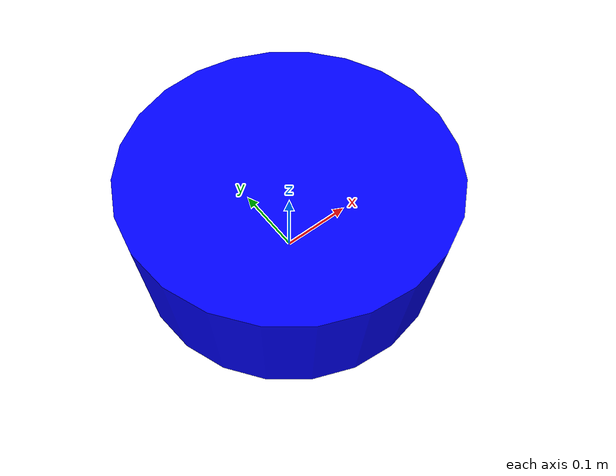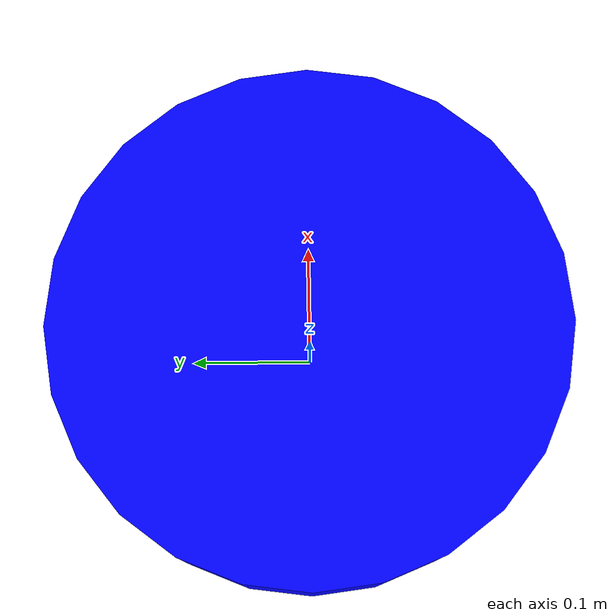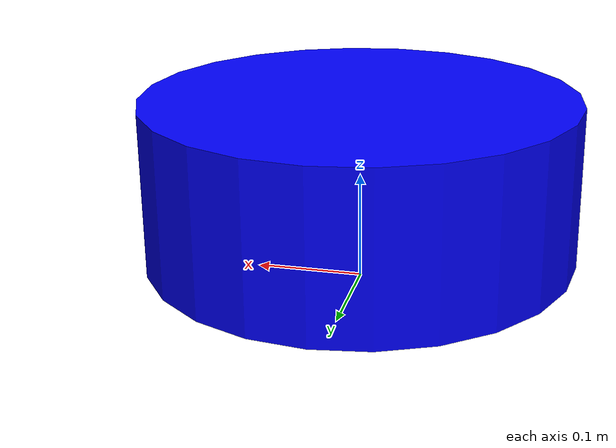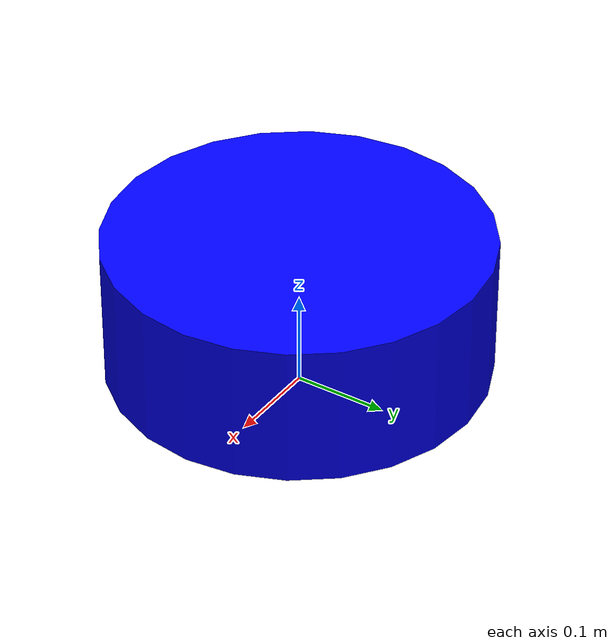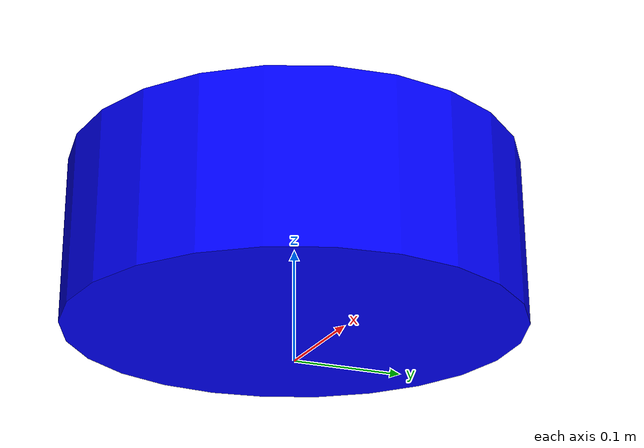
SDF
<!-- robot.sdf -->
<sdf version="1.6">
  <model name="simple_diff_drive">
    <static>false</static>

    <!-- Cuerpo principal del robot (un cilindro) -->
    <link name="chassis">
      <pose>0 0 0.1 0 0 0</pose>
      <inertial>
        <mass>5.0</mass>
      </inertial>
      <collision name="collision">
        <geometry>
          <cylinder>
            <radius>0.2</radius>
            <length>0.15</length>
          </cylinder>
        </geometry>
      </collision>
      <visual name="visual">
        <geometry>
          <cylinder>
            <radius>0.2</radius>
            <length>0.15</length>
          </cylinder>
        </geometry>
        <material>
          <ambient>0.0 0.0 1.0 1</ambient>
          <diffuse>0.0 0.0 1.0 1</diffuse>
        </material>
      </visual>

      <!-- Sensor Láser (LIDAR) -->
      <sensor name="laser" type="ray">
        <pose>0 0 0.05 0 0 0</pose>
        <visualize>true</visualize>
        <update_rate>10</update_rate>
        <ray>
          <scan>
            <horizontal>
              <samples>360</samples>
              <resolution>1</resolution>
              <min_angle>-3.14</min_angle>
              <max_angle>3.14</max_angle>
            </horizontal>
          </scan>
          <range>
            <min>0.1</min>
            <max>10.0</max>
          </range>
        </ray>
        <plugin name="gazebo_ros_laser" filename="libgazebo_ros_ray_sensor.so">
          <ros>
            <namespace>/</namespace>
            <!-- El láser publicará los datos en el topic '/scan' -->
            <output_type>sensor_msgs/LaserScan</output_type>
            <topic>scan</topic>
          </ros>
        </plugin>
      </sensor>
    </link>

    <!-- Plugin de control para mover el robot -->
    <plugin name="differential_drive_controller" filename="libgazebo_ros_diff_drive.so">
      <left_joint>left_wheel_joint</left_joint>
      <right_joint>right_wheel_joint</right_joint>
      <wheel_separation>0.4</wheel_separation>
      <wheel_diameter>0.1</wheel_diameter>
      <max_wheel_torque>20</max_wheel_torque>
      <max_wheel_acceleration>1.0</max_wheel_acceleration>
      <!-- El robot escuchará comandos de velocidad en el topic '/cmd_vel' -->
      <command_topic>cmd_vel</command_topic>
      <publish_odom>true</publish_odom>
      <publish_odom_tf>true</publish_odom_tf>
      <publish_wheel_tf>true</publish_wheel_tf>
      <odometry_topic>odom</odometry_topic>
      <robot_base_frame>chassis</robot_base_frame>
    </plugin>
  </model>
</sdf>
